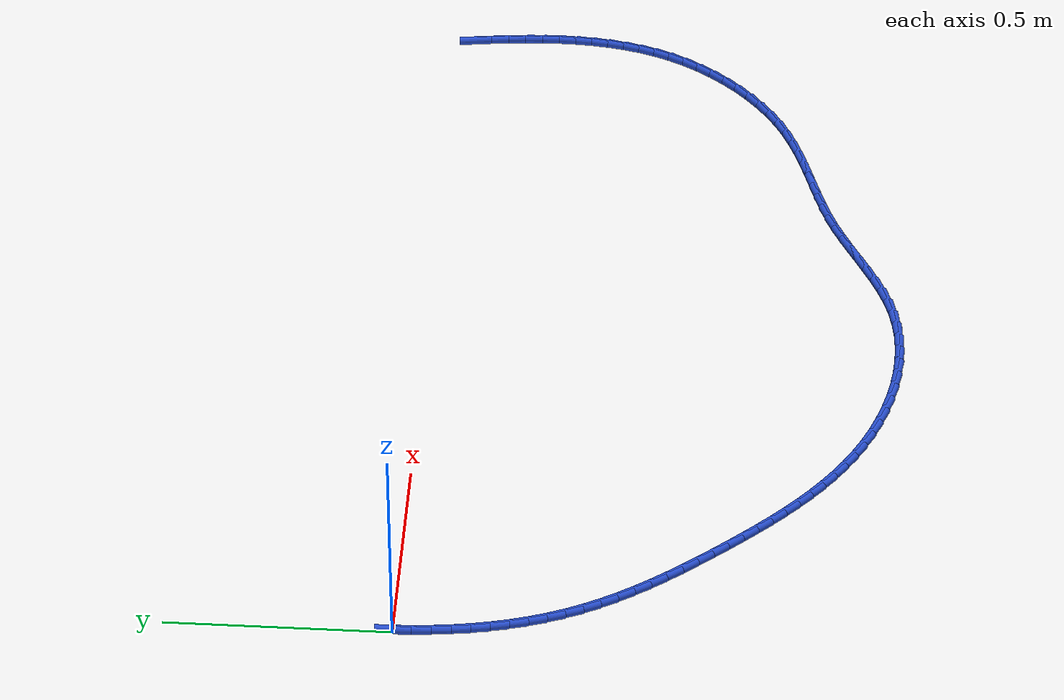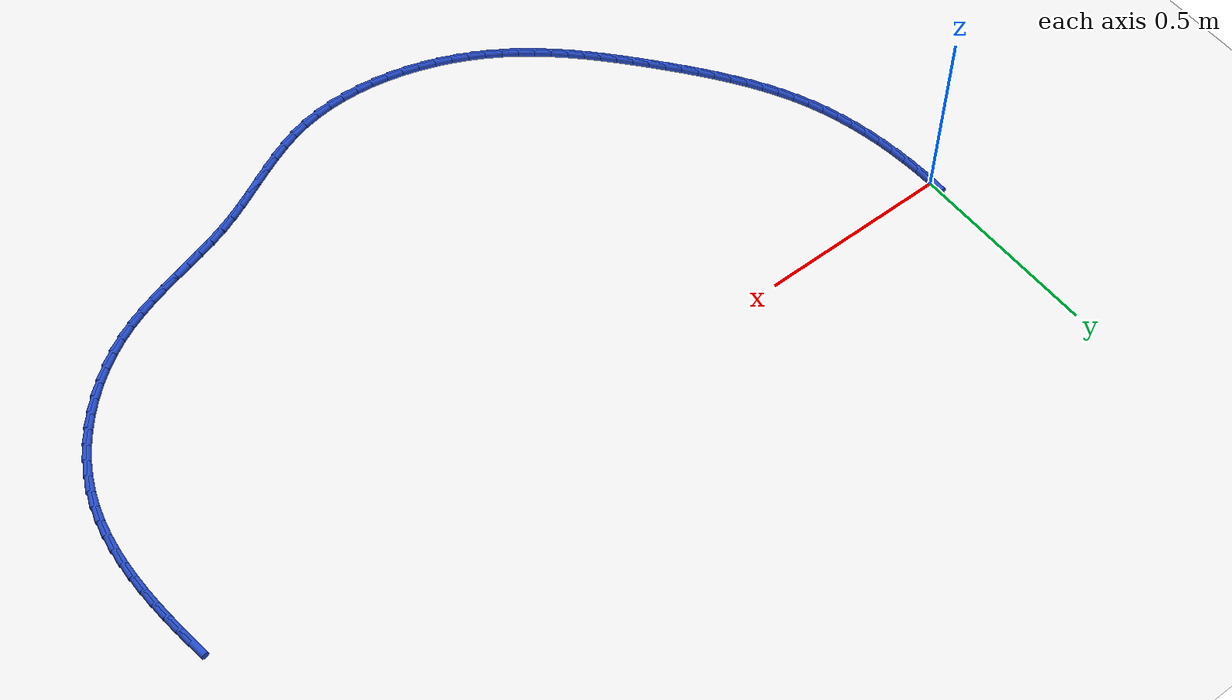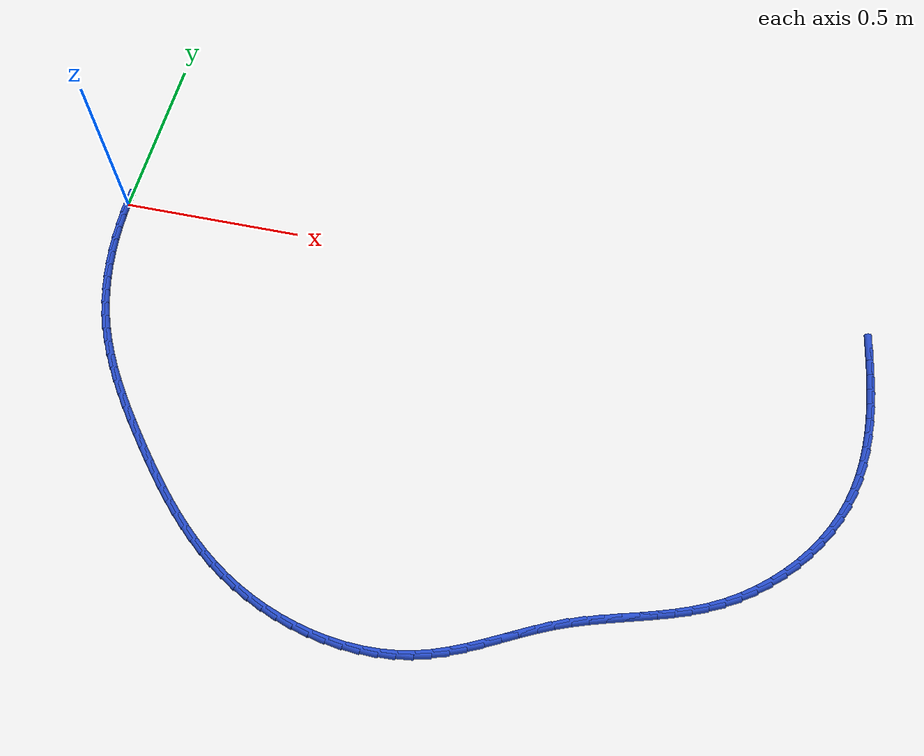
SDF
<sdf version="1.6">
 <world name="default">
  <model name="ground_plane">
   <static>1</static>
   <link name="link">
    <collision name="collision">
     <geometry><plane><normal>0 0 1</normal><size>100 100</size></plane></geometry>
     <surface><friction><ode><mu>100</mu><mu2>50</mu2></ode></friction></surface>
    </collision>
    <visual name="visual">
     <cast_shadows>0</cast_shadows>
     <geometry><plane><normal>0 0 1</normal><size>100 100</size></plane></geometry>
     <material>
      <script><uri>file://media/materials/scripts/gazebo.material</uri><name>Gazebo/WhiteGlow</name></script>
     </material>
    </visual>
   </link>
  </model>
  <model name="line">
   <link name="link_0">
    <pose>-1.6479873021779667e-17 -8.326672684688674e-17 0.01 0 1.57 -1.5696141677985251</pose>
    <collision name="collision">
     <geometry><cylinder><radius>0.01</radius><length>0.08</length></cylinder></geometry>
    </collision>
    <visual name="visual">
     <material>
      <script><name>Gazebo/Blue</name><uri>file://media/materials/scripts/gazebo.material</uri></script>
     </material>
     <geometry><cylinder><radius>0.01</radius><length>0.08</length></cylinder></geometry>
    </visual>
   </link>
   <link name="link_80">
    <pose>2.0935460116196314 -0.03920484027378614 0.01 0 1.57 -1.4511590344249525</pose>
    <collision name="collision">
     <geometry><cylinder><radius>0.01</radius><length>0.08</length></cylinder></geometry>
    </collision>
    <visual name="visual">
     <material>
      <script><name>Gazebo/Blue</name><uri>file://media/materials/scripts/gazebo.material</uri></script>
     </material>
     <geometry><cylinder><radius>0.01</radius><length>0.08</length></cylinder></geometry>
    </visual>
   </link>
   <link name="link_81">
    <pose>2.0987205130608544 -0.08224986463521909 0.01 0 1.57 -1.4704585164342756</pose>
    <collision name="collision">
     <geometry><cylinder><radius>0.01</radius><length>0.08</length></cylinder></geometry>
    </collision>
    <visual name="visual">
     <material>
      <script><name>Gazebo/Blue</name><uri>file://media/materials/scripts/gazebo.material</uri></script>
     </material>
     <geometry><cylinder><radius>0.01</radius><length>0.08</length></cylinder></geometry>
    </visual>
   </link>
   <link name="link_82">
    <pose>2.1030447844683566 -0.125202265674989 0.01 0 1.57 -1.494640015795897</pose>
    <collision name="collision">
     <geometry><cylinder><radius>0.01</radius><length>0.08</length></cylinder></geometry>
    </collision>
    <visual name="visual">
     <material>
      <script><name>Gazebo/Blue</name><uri>file://media/materials/scripts/gazebo.material</uri></script>
     </material>
     <geometry><cylinder><radius>0.01</radius><length>0.08</length></cylinder></geometry>
    </visual>
   </link>
   <link name="link_83">
    <pose>2.1063096769935683 -0.16799029138757554 0.01 0 1.57 -1.5239147054902131</pose>
    <collision name="collision">
     <geometry><cylinder><radius>0.01</radius><length>0.08</length></cylinder></geometry>
    </collision>
    <visual name="visual">
     <material>
      <script><name>Gazebo/Blue</name><uri>file://media/materials/scripts/gazebo.material</uri></script>
     </material>
     <geometry><cylinder><radius>0.01</radius><length>0.08</length></cylinder></geometry>
    </visual>
   </link>
   <link name="link_84">
    <pose>2.1083060417879165 -0.21054218976746086 0.01 0 1.57 -1.5585185614814403</pose>
    <collision name="collision">
     <geometry><cylinder><radius>0.01</radius><length>0.08</length></cylinder></geometry>
    </collision>
    <visual name="visual">
     <material>
      <script><name>Gazebo/Blue</name><uri>file://media/materials/scripts/gazebo.material</uri></script>
     </material>
     <geometry><cylinder><radius>0.01</radius><length>0.08</length></cylinder></geometry>
    </visual>
   </link>
   <link name="link_85">
    <pose>2.1088247300028318 -0.2527862088091264 0.01 0 1.57 1.542900679453798</pose>
    <collision name="collision">
     <geometry><cylinder><radius>0.01</radius><length>0.08</length></cylinder></geometry>
    </collision>
    <visual name="visual">
     <material>
      <script><name>Gazebo/Blue</name><uri>file://media/materials/scripts/gazebo.material</uri></script>
     </material>
     <geometry><cylinder><radius>0.01</radius><length>0.08</length></cylinder></geometry>
    </visual>
   </link>
   <link name="link_86">
    <pose>2.107656592789741 -0.2946505965070533 0.01 0 1.57 1.4969417863546002</pose>
    <collision name="collision">
     <geometry><cylinder><radius>0.01</radius><length>0.08</length></cylinder></geometry>
    </collision>
    <visual name="visual">
     <material>
      <script><name>Gazebo/Blue</name><uri>file://media/materials/scripts/gazebo.material</uri></script>
     </material>
     <geometry><cylinder><radius>0.01</radius><length>0.08</length></cylinder></geometry>
    </visual>
   </link>
   <link name="link_87">
    <pose>2.1045924813000743 -0.33606360085572384 0.01 0 1.57 1.4450449310464557</pose>
    <collision name="collision">
     <geometry><cylinder><radius>0.01</radius><length>0.08</length></cylinder></geometry>
    </collision>
    <visual name="visual">
     <material>
      <script><name>Gazebo/Blue</name><uri>file://media/materials/scripts/gazebo.material</uri></script>
     </material>
     <geometry><cylinder><radius>0.01</radius><length>0.08</length></cylinder></geometry>
    </visual>
   </link>
   <link name="link_88">
    <pose>2.09942324668526 -0.3769534698496177 0.01 0 1.57 1.387170333661449</pose>
    <collision name="collision">
     <geometry><cylinder><radius>0.01</radius><length>0.08</length></cylinder></geometry>
    </collision>
    <visual name="visual">
     <material>
      <script><name>Gazebo/Blue</name><uri>file://media/materials/scripts/gazebo.material</uri></script>
     </material>
     <geometry><cylinder><radius>0.01</radius><length>0.08</length></cylinder></geometry>
    </visual>
   </link>
   <link name="link_89">
    <pose>2.091939740096727 -0.417248451483217 0.01 0 1.57 1.3234478207695324</pose>
    <collision name="collision">
     <geometry><cylinder><radius>0.01</radius><length>0.08</length></cylinder></geometry>
    </collision>
    <visual name="visual">
     <material>
      <script><name>Gazebo/Blue</name><uri>file://media/materials/scripts/gazebo.material</uri></script>
     </material>
     <geometry><cylinder><radius>0.01</radius><length>0.08</length></cylinder></geometry>
    </visual>
   </link>
   <link name="link_90">
    <pose>2.0819328126859036 -0.4568767937510031 0.01 0 1.57 1.254234374512312</pose>
    <collision name="collision">
     <geometry><cylinder><radius>0.01</radius><length>0.08</length></cylinder></geometry>
    </collision>
    <visual name="visual">
     <material>
      <script><name>Gazebo/Blue</name><uri>file://media/materials/scripts/gazebo.material</uri></script>
     </material>
     <geometry><cylinder><radius>0.01</radius><length>0.08</length></cylinder></geometry>
    </visual>
   </link>
   <link name="link_91">
    <pose>2.0691933156042186 -0.4957667446474573 0.01 0 1.57 1.1801608470979135</pose>
    <collision name="collision">
     <geometry><cylinder><radius>0.01</radius><length>0.08</length></cylinder></geometry>
    </collision>
    <visual name="visual">
     <material>
      <script><name>Gazebo/Blue</name><uri>file://media/materials/scripts/gazebo.material</uri></script>
     </material>
     <geometry><cylinder><radius>0.01</radius><length>0.08</length></cylinder></geometry>
    </visual>
   </link>
   <link name="link_92">
    <pose>2.0535121331206407 -0.5338465407360613 0.01 0 1.57 1.1037062422990478</pose>
    <collision name="collision">
     <geometry><cylinder><radius>0.01</radius><length>0.08</length></cylinder></geometry>
    </collision>
    <visual name="visual">
     <material>
      <script><name>Gazebo/Blue</name><uri>file://media/materials/scripts/gazebo.material</uri></script>
     </material>
     <geometry><cylinder><radius>0.01</radius><length>0.08</length></cylinder></geometry>
    </visual>
   </link>
   <link name="link_93">
    <pose>2.0347681740403094 -0.5710140356303971 0.01 0 1.57 1.0300789832791954</pose>
    <collision name="collision">
     <geometry><cylinder><radius>0.01</radius><length>0.08</length></cylinder></geometry>
    </collision>
    <visual name="visual">
     <material>
      <script><name>Gazebo/Blue</name><uri>file://media/materials/scripts/gazebo.material</uri></script>
     </material>
     <geometry><cylinder><radius>0.01</radius><length>0.08</length></cylinder></geometry>
    </visual>
   </link>
   <link name="link_94">
    <pose>2.0131195629053993 -0.6070707075683045 0.01 0 1.57 0.9594884957494776</pose>
    <collision name="collision">
     <geometry><cylinder><radius>0.01</radius><length>0.08</length></cylinder></geometry>
    </collision>
    <visual name="visual">
     <material>
      <script><name>Gazebo/Blue</name><uri>file://media/materials/scripts/gazebo.material</uri></script>
     </material>
     <geometry><cylinder><radius>0.01</radius><length>0.08</length></cylinder></geometry>
    </visual>
   </link>
   <link name="link_95">
    <pose>1.9887796581796495 -0.6417989699956376 0.01 0 1.57 0.8910765824037559</pose>
    <collision name="collision">
     <geometry><cylinder><radius>0.01</radius><length>0.08</length></cylinder></geometry>
    </collision>
    <visual name="visual">
     <material>
      <script><name>Gazebo/Blue</name><uri>file://media/materials/scripts/gazebo.material</uri></script>
     </material>
     <geometry><cylinder><radius>0.01</radius><length>0.08</length></cylinder></geometry>
    </visual>
   </link>
   <link name="link_96">
    <pose>1.9619618183268026 -0.6749812363582511 0.01 0 1.57 0.8239942719198692</pose>
    <collision name="collision">
     <geometry><cylinder><radius>0.01</radius><length>0.08</length></cylinder></geometry>
    </collision>
    <visual name="visual">
     <material>
      <script><name>Gazebo/Blue</name><uri>file://media/materials/scripts/gazebo.material</uri></script>
     </material>
     <geometry><cylinder><radius>0.01</radius><length>0.08</length></cylinder></geometry>
    </visual>
   </link>
   <link name="link_97">
    <pose>1.932879401810601 -0.7063999201019988 0.01 0 1.57 0.7574033663054105</pose>
    <collision name="collision">
     <geometry><cylinder><radius>0.01</radius><length>0.08</length></cylinder></geometry>
    </collision>
    <visual name="visual">
     <material>
      <script><name>Gazebo/Blue</name><uri>file://media/materials/scripts/gazebo.material</uri></script>
     </material>
     <geometry><cylinder><radius>0.01</radius><length>0.08</length></cylinder></geometry>
    </visual>
   </link>
   <link name="link_98">
    <pose>1.9017457670947864 -0.7358374346727353 0.01 0 1.57 0.6904723676417378</pose>
    <collision name="collision">
     <geometry><cylinder><radius>0.01</radius><length>0.08</length></cylinder></geometry>
    </collision>
    <visual name="visual">
     <material>
      <script><name>Gazebo/Blue</name><uri>file://media/materials/scripts/gazebo.material</uri></script>
     </material>
     <geometry><cylinder><radius>0.01</radius><length>0.08</length></cylinder></geometry>
    </visual>
   </link>
   <link name="link_99">
    <pose>1.8687742726430996 -0.7630761935163152 0.01 0 1.57 0.6223706161427505</pose>
    <collision name="collision">
     <geometry><cylinder><radius>0.01</radius><length>0.08</length></cylinder></geometry>
    </collision>
    <visual name="visual">
     <material>
      <script><name>Gazebo/Blue</name><uri>file://media/materials/scripts/gazebo.material</uri></script>
     </material>
     <geometry><cylinder><radius>0.01</radius><length>0.08</length></cylinder></geometry>
    </visual>
   </link>
   <link name="link_100">
    <pose>1.834178276919283 -0.7878986100785925 0.01 0 1.57 0.5522640775014167</pose>
    <collision name="collision">
     <geometry><cylinder><radius>0.01</radius><length>0.08</length></cylinder></geometry>
    </collision>
    <visual name="visual">
     <material>
      <script><name>Gazebo/Blue</name><uri>file://media/materials/scripts/gazebo.material</uri></script>
     </material>
     <geometry><cylinder><radius>0.01</radius><length>0.08</length></cylinder></geometry>
    </visual>
   </link>
   <link name="link_101">
    <pose>1.7981711383870773 -0.8100870978054225 0.01 0 1.57 0.47977164110658044</pose>
    <collision name="collision">
     <geometry><cylinder><radius>0.01</radius><length>0.08</length></cylinder></geometry>
    </collision>
    <visual name="visual">
     <material>
      <script><name>Gazebo/Blue</name><uri>file://media/materials/scripts/gazebo.material</uri></script>
     </material>
     <geometry><cylinder><radius>0.01</radius><length>0.08</length></cylinder></geometry>
    </visual>
   </link>
   <link name="link_102">
    <pose>1.760965926113412 -0.829445737160789 0.01 0 1.57 0.4127642913571621</pose>
    <collision name="collision">
     <geometry><cylinder><radius>0.01</radius><length>0.08</length></cylinder></geometry>
    </collision>
    <visual name="visual">
     <material>
      <script><name>Gazebo/Blue</name><uri>file://media/materials/scripts/gazebo.material</uri></script>
     </material>
     <geometry><cylinder><radius>0.01</radius><length>0.08</length></cylinder></geometry>
    </visual>
   </link>
   <link name="link_103">
    <pose>1.7227704499630063 -0.8461723628740385 0.01 0 1.57 0.3591565815814277</pose>
    <collision name="collision">
     <geometry><cylinder><radius>0.01</radius><length>0.08</length></cylinder></geometry>
    </collision>
    <visual name="visual">
     <material>
      <script><name>Gazebo/Blue</name><uri>file://media/materials/scripts/gazebo.material</uri></script>
     </material>
     <geometry><cylinder><radius>0.01</radius><length>0.08</length></cylinder></geometry>
    </visual>
   </link>
   <link name="link_104">
    <pose>1.6837879363957575 -0.8608079672724994 0.01 0 1.57 0.31966181598271337</pose>
    <collision name="collision">
     <geometry><cylinder><radius>0.01</radius><length>0.08</length></cylinder></geometry>
    </collision>
    <visual name="visual">
     <material>
      <script><name>Gazebo/Blue</name><uri>file://media/materials/scripts/gazebo.material</uri></script>
     </material>
     <geometry><cylinder><radius>0.01</radius><length>0.08</length></cylinder></geometry>
    </visual>
   </link>
   <link name="link_105">
    <pose>1.6442214584362187 -0.8739050303235776 0.01 0 1.57 0.29436612367566006</pose>
    <collision name="collision">
     <geometry><cylinder><radius>0.01</radius><length>0.08</length></cylinder></geometry>
    </collision>
    <visual name="visual">
     <material>
      <script><name>Gazebo/Blue</name><uri>file://media/materials/scripts/gazebo.material</uri></script>
     </material>
     <geometry><cylinder><radius>0.01</radius><length>0.08</length></cylinder></geometry>
    </visual>
   </link>
   <link name="link_106">
    <pose>1.604274089108943 -0.8860160319946798 0.01 0 1.57 0.28320236044601754</pose>
    <collision name="collision">
     <geometry><cylinder><radius>0.01</radius><length>0.08</length></cylinder></geometry>
    </collision>
    <visual name="visual">
     <material>
      <script><name>Gazebo/Blue</name><uri>file://media/materials/scripts/gazebo.material</uri></script>
     </material>
     <geometry><cylinder><radius>0.01</radius><length>0.08</length></cylinder></geometry>
    </visual>
   </link>
   <link name="link_107">
    <pose>1.564148901438484 -0.8976934522532116 0.01 0 1.57 0.28610241495619676</pose>
    <collision name="collision">
     <geometry><cylinder><radius>0.01</radius><length>0.08</length></cylinder></geometry>
    </collision>
    <visual name="visual">
     <material>
      <script><name>Gazebo/Blue</name><uri>file://media/materials/scripts/gazebo.material</uri></script>
     </material>
     <geometry><cylinder><radius>0.01</radius><length>0.08</length></cylinder></geometry>
    </visual>
   </link>
   <link name="link_108">
    <pose>1.5240489684493932 -0.909489771066579 0.01 0 1.57 0.3030635543394813</pose>
    <collision name="collision">
     <geometry><cylinder><radius>0.01</radius><length>0.08</length></cylinder></geometry>
    </collision>
    <visual name="visual">
     <material>
      <script><name>Gazebo/Blue</name><uri>file://media/materials/scripts/gazebo.material</uri></script>
     </material>
     <geometry><cylinder><radius>0.01</radius><length>0.08</length></cylinder></geometry>
    </visual>
   </link>
   <link name="link_109">
    <pose>1.484177363166223 -0.9219574684021882 0.01 0 1.57 0.33413107522237095</pose>
    <collision name="collision">
     <geometry><cylinder><radius>0.01</radius><length>0.08</length></cylinder></geometry>
    </collision>
    <visual name="visual">
     <material>
      <script><name>Gazebo/Blue</name><uri>file://media/materials/scripts/gazebo.material</uri></script>
     </material>
     <geometry><cylinder><radius>0.01</radius><length>0.08</length></cylinder></geometry>
    </visual>
   </link>
   <link name="link_110">
    <pose>1.4447371586135274 -0.9356490242274458 0.01 0 1.57 0.3791542190764861</pose>
    <collision name="collision">
     <geometry><cylinder><radius>0.01</radius><length>0.08</length></cylinder></geometry>
    </collision>
    <visual name="visual">
     <material>
      <script><name>Gazebo/Blue</name><uri>file://media/materials/scripts/gazebo.material</uri></script>
     </material>
     <geometry><cylinder><radius>0.01</radius><length>0.08</length></cylinder></geometry>
    </visual>
   </link>
   <link name="link_111">
    <pose>1.4059294584291075 -0.9511112671620638 0.01 0 1.57 0.42694644986485186</pose>
    <collision name="collision">
     <geometry><cylinder><radius>0.01</radius><length>0.08</length></cylinder></geometry>
    </collision>
    <visual name="visual">
     <material>
      <script><name>Gazebo/Blue</name><uri>file://media/materials/scripts/gazebo.material</uri></script>
     </material>
     <geometry><cylinder><radius>0.01</radius><length>0.08</length></cylinder></geometry>
    </visual>
   </link>
   <link name="link_112">
    <pose>1.3678037083455945 -0.9684558286493804 0.01 0 1.57 0.45888676727699623</pose>
    <collision name="collision">
     <geometry><cylinder><radius>0.01</radius><length>0.08</length></cylinder></geometry>
    </collision>
    <visual name="visual">
     <material>
      <script><name>Gazebo/Blue</name><uri>file://media/materials/scripts/gazebo.material</uri></script>
     </material>
     <geometry><cylinder><radius>0.01</radius><length>0.08</length></cylinder></geometry>
    </visual>
   </link>
   <link name="link_113">
    <pose>1.3301526863218927 -0.9870578068787484 0.01 0 1.57 0.47341810155405756</pose>
    <collision name="collision">
     <geometry><cylinder><radius>0.01</radius><length>0.08</length></cylinder></geometry>
    </collision>
    <visual name="visual">
     <material>
      <script><name>Gazebo/Blue</name><uri>file://media/materials/scripts/gazebo.material</uri></script>
     </material>
     <geometry><cylinder><radius>0.01</radius><length>0.08</length></cylinder></geometry>
    </visual>
   </link>
   <link name="link_114">
    <pose>1.2927443586450902 -1.006221100523059 0.01 0 1.57 0.47067500795220174</pose>
    <collision name="collision">
     <geometry><cylinder><radius>0.01</radius><length>0.08</length></cylinder></geometry>
    </collision>
    <visual name="visual">
     <material>
      <script><name>Gazebo/Blue</name><uri>file://media/materials/scripts/gazebo.material</uri></script>
     </material>
     <geometry><cylinder><radius>0.01</radius><length>0.08</length></cylinder></geometry>
    </visual>
   </link>
   <link name="link_115">
    <pose>1.2553466916022749 -1.0252496082552016 0.01 0 1.57 0.4505505898525352</pose>
    <collision name="collision">
     <geometry><cylinder><radius>0.01</radius><length>0.08</length></cylinder></geometry>
    </collision>
    <visual name="visual">
     <material>
      <script><name>Gazebo/Blue</name><uri>file://media/materials/scripts/gazebo.material</uri></script>
     </material>
     <geometry><cylinder><radius>0.01</radius><length>0.08</length></cylinder></geometry>
    </visual>
   </link>
   <link name="link_116">
    <pose>1.2177276514805337 -1.0434472287480667 0.01 0 1.57 0.41271764187791726</pose>
    <collision name="collision">
     <geometry><cylinder><radius>0.01</radius><length>0.08</length></cylinder></geometry>
    </collision>
    <visual name="visual">
     <material>
      <script><name>Gazebo/Blue</name><uri>file://media/materials/scripts/gazebo.material</uri></script>
     </material>
     <geometry><cylinder><radius>0.01</radius><length>0.08</length></cylinder></geometry>
    </visual>
   </link>
   <link name="link_117">
    <pose>1.1796552045669568 -1.0601178606745443 0.01 0 1.57 0.3568088313649624</pose>
    <collision name="collision">
     <geometry><cylinder><radius>0.01</radius><length>0.08</length></cylinder></geometry>
    </collision>
    <visual name="visual">
     <material>
      <script><name>Gazebo/Blue</name><uri>file://media/materials/scripts/gazebo.material</uri></script>
     </material>
     <geometry><cylinder><radius>0.01</radius><length>0.08</length></cylinder></geometry>
    </visual>
   </link>
   <link name="link_118">
    <pose>1.1408973171486303 -1.0745654027075244 0.01 0 1.57 0.28282551097658043</pose>
    <collision name="collision">
     <geometry><cylinder><radius>0.01</radius><length>0.08</length></cylinder></geometry>
    </collision>
    <visual name="visual">
     <material>
      <script><name>Gazebo/Blue</name><uri>file://media/materials/scripts/gazebo.material</uri></script>
     </material>
     <geometry><cylinder><radius>0.01</radius><length>0.08</length></cylinder></geometry>
    </visual>
   </link>
   <link name="link_119">
    <pose>1.1012228790890737 -1.086095427882393 0.01 0 1.57 0.19815621865097988</pose>
    <collision name="collision">
     <geometry><cylinder><radius>0.01</radius><length>0.08</length></cylinder></geometry>
    </collision>
    <visual name="visual">
     <material>
      <script><name>Gazebo/Blue</name><uri>file://media/materials/scripts/gazebo.material</uri></script>
     </material>
     <geometry><cylinder><radius>0.01</radius><length>0.08</length></cylinder></geometry>
    </visual>
   </link>
   <link name="link_120">
    <pose>1.0605391507601036 -1.09426436274485 0.01 0 1.57 0.11704556574156334</pose>
    <collision name="collision">
     <geometry><cylinder><radius>0.01</radius><length>0.08</length></cylinder></geometry>
    </collision>
    <visual name="visual">
     <material>
      <script><name>Gazebo/Blue</name><uri>file://media/materials/scripts/gazebo.material</uri></script>
     </material>
     <geometry><cylinder><radius>0.01</radius><length>0.08</length></cylinder></geometry>
    </visual>
   </link>
   <link name="link_121">
    <pose>1.0190377880153483 -1.0991442177305881 0.01 0 1.57 0.040986537509210476</pose>
    <collision name="collision">
     <geometry><cylinder><radius>0.01</radius><length>0.08</length></cylinder></geometry>
    </collision>
    <visual name="visual">
     <material>
      <script><name>Gazebo/Blue</name><uri>file://media/materials/scripts/gazebo.material</uri></script>
     </material>
     <geometry><cylinder><radius>0.01</radius><length>0.08</length></cylinder></geometry>
    </visual>
   </link>
   <link name="link_122">
    <pose>0.9769454189754135 -1.1008704049064906 0.01 0 1.57 -0.030423195217353382</pose>
    <collision name="collision">
     <geometry><cylinder><radius>0.01</radius><length>0.08</length></cylinder></geometry>
    </collision>
    <visual name="visual">
     <material>
      <script><name>Gazebo/Blue</name><uri>file://media/materials/scripts/gazebo.material</uri></script>
     </material>
     <geometry><cylinder><radius>0.01</radius><length>0.08</length></cylinder></geometry>
    </visual>
   </link>
   <link name="link_123">
    <pose>0.9344886717609047 -1.0995783363394411 0.01 0 1.57 -0.09770321499713813</pose>
    <collision name="collision">
     <geometry><cylinder><radius>0.01</radius><length>0.08</length></cylinder></geometry>
    </collision>
    <visual name="visual">
     <material>
      <script><name>Gazebo/Blue</name><uri>file://media/materials/scripts/gazebo.material</uri></script>
     </material>
     <geometry><cylinder><radius>0.01</radius><length>0.08</length></cylinder></geometry>
    </visual>
   </link>
   <link name="link_124">
    <pose>0.891894174492427 -1.0954034240963242 0.01 0 1.57 -0.16143984305218112</pose>
    <collision name="collision">
     <geometry><cylinder><radius>0.01</radius><length>0.08</length></cylinder></geometry>
    </collision>
    <visual name="visual">
     <material>
      <script><name>Gazebo/Blue</name><uri>file://media/materials/scripts/gazebo.material</uri></script>
     </material>
     <geometry><cylinder><radius>0.01</radius><length>0.08</length></cylinder></geometry>
    </visual>
   </link>
   <link name="link_125">
    <pose>0.8493885552905864 -1.0884810802440241 0.01 0 1.57 -0.2222524739414261</pose>
    <collision name="collision">
     <geometry><cylinder><radius>0.01</radius><length>0.08</length></cylinder></geometry>
    </collision>
    <visual name="visual">
     <material>
      <script><name>Gazebo/Blue</name><uri>file://media/materials/scripts/gazebo.material</uri></script>
     </material>
     <geometry><cylinder><radius>0.01</radius><length>0.08</length></cylinder></geometry>
    </visual>
   </link>
   <link name="link_126">
    <pose>0.8071984422759871 -1.0789467168494247 0.01 0 1.57 -0.2807741251758357</pose>
    <collision name="collision">
     <geometry><cylinder><radius>0.01</radius><length>0.08</length></cylinder></geometry>
    </collision>
    <visual name="visual">
     <material>
      <script><name>Gazebo/Blue</name><uri>file://media/materials/scripts/gazebo.material</uri></script>
     </material>
     <geometry><cylinder><radius>0.01</radius><length>0.08</length></cylinder></geometry>
    </visual>
   </link>
   <link name="link_127">
    <pose>0.7655504635692363 -1.06693574597941 0.01 0 1.57 -0.3376429712731801</pose>
    <collision name="collision">
     <geometry><cylinder><radius>0.01</radius><length>0.08</length></cylinder></geometry>
    </collision>
    <visual name="visual">
     <material>
      <script><name>Gazebo/Blue</name><uri>file://media/materials/scripts/gazebo.material</uri></script>
     </material>
     <geometry><cylinder><radius>0.01</radius><length>0.08</length></cylinder></geometry>
    </visual>
   </link>
   <link name="link_128">
    <pose>0.7246712472909387 -1.0525835797008642 0.01 0 1.57 -0.3935019526139334</pose>
    <collision name="collision">
     <geometry><cylinder><radius>0.01</radius><length>0.08</length></cylinder></geometry>
    </collision>
    <visual name="visual">
     <material>
      <script><name>Gazebo/Blue</name><uri>file://media/materials/scripts/gazebo.material</uri></script>
     </material>
     <geometry><cylinder><radius>0.01</radius><length>0.08</length></cylinder></geometry>
    </visual>
   </link>
   <link name="link_129">
    <pose>0.6847874215616999 -1.0360256300806712 0.01 0 1.57 -0.4490041853787734</pose>
    <collision name="collision">
     <geometry><cylinder><radius>0.01</radius><length>0.08</length></cylinder></geometry>
    </collision>
    <visual name="visual">
     <material>
      <script><name>Gazebo/Blue</name><uri>file://media/materials/scripts/gazebo.material</uri></script>
     </material>
     <geometry><cylinder><radius>0.01</radius><length>0.08</length></cylinder></geometry>
    </visual>
   </link>
   <link name="link_130">
    <pose>0.6461256145021254 -1.0173973091857154 0.01 0 1.57 -0.5047663223242437</pose>
    <collision name="collision">
     <geometry><cylinder><radius>0.01</radius><length>0.08</length></cylinder></geometry>
    </collision>
    <visual name="visual">
     <material>
      <script><name>Gazebo/Blue</name><uri>file://media/materials/scripts/gazebo.material</uri></script>
     </material>
     <geometry><cylinder><radius>0.01</radius><length>0.08</length></cylinder></geometry>
    </visual>
   </link>
   <link name="link_131">
    <pose>0.6089077241259498 -0.9968341453245164 0.01 0 1.57 -0.5594815733165317</pose>
    <collision name="collision">
     <geometry><cylinder><radius>0.01</radius><length>0.08</length></cylinder></geometry>
    </collision>
    <visual name="visual">
     <material>
      <script><name>Gazebo/Blue</name><uri>file://media/materials/scripts/gazebo.material</uri></script>
     </material>
     <geometry><cylinder><radius>0.01</radius><length>0.08</length></cylinder></geometry>
    </visual>
   </link>
   <link name="link_132">
    <pose>0.5732038532850358 -0.9744753971479553 0.01 0 1.57 -0.610736398015351</pose>
    <collision name="collision">
     <geometry><cylinder><radius>0.01</radius><length>0.08</length></cylinder></geometry>
    </collision>
    <visual name="visual">
     <material>
      <script><name>Gazebo/Blue</name><uri>file://media/materials/scripts/gazebo.material</uri></script>
     </material>
     <geometry><cylinder><radius>0.01</radius><length>0.08</length></cylinder></geometry>
    </visual>
   </link>
   <link name="link_133">
    <pose>0.538903700160916 -0.9504647567234652 0.01 0 1.57 -0.6579883181360199</pose>
    <collision name="collision">
     <geometry><cylinder><radius>0.01</radius><length>0.08</length></cylinder></geometry>
    </collision>
    <visual name="visual">
     <material>
      <script><name>Gazebo/Blue</name><uri>file://media/materials/scripts/gazebo.material</uri></script>
     </material>
     <geometry><cylinder><radius>0.01</radius><length>0.08</length></cylinder></geometry>
    </visual>
   </link>
   <link name="link_134">
    <pose>0.5058864573944308 -0.9249461742905002 0.01 0 1.57 -0.700942421439974</pose>
    <collision name="collision">
     <geometry><cylinder><radius>0.01</radius><length>0.08</length></cylinder></geometry>
    </collision>
    <visual name="visual">
     <material>
      <script><name>Gazebo/Blue</name><uri>file://media/materials/scripts/gazebo.material</uri></script>
     </material>
     <geometry><cylinder><radius>0.01</radius><length>0.08</length></cylinder></geometry>
    </visual>
   </link>
   <link name="link_135">
    <pose>0.47403131762642076 -0.8980636000885134 0.01 0 1.57 -0.7394124235924814</pose>
    <collision name="collision">
     <geometry><cylinder><radius>0.01</radius><length>0.08</length></cylinder></geometry>
    </collision>
    <visual name="visual">
     <material>
      <script><name>Gazebo/Blue</name><uri>file://media/materials/scripts/gazebo.material</uri></script>
     </material>
     <geometry><cylinder><radius>0.01</radius><length>0.08</length></cylinder></geometry>
    </visual>
   </link>
   <link name="link_136">
    <pose>0.44321747349772506 -0.8699609843569576 0.01 0 1.57 -0.7733008380294207</pose>
    <collision name="collision">
     <geometry><cylinder><radius>0.01</radius><length>0.08</length></cylinder></geometry>
    </collision>
    <visual name="visual">
     <material>
      <script><name>Gazebo/Blue</name><uri>file://media/materials/scripts/gazebo.material</uri></script>
     </material>
     <geometry><cylinder><radius>0.01</radius><length>0.08</length></cylinder></geometry>
    </visual>
   </link>
   <link name="link_137">
    <pose>0.4133241176491855 -0.8407822773352874 0.01 0 1.57 -0.8025771394201401</pose>
    <collision name="collision">
     <geometry><cylinder><radius>0.01</radius><length>0.08</length></cylinder></geometry>
    </collision>
    <visual name="visual">
     <material>
      <script><name>Gazebo/Blue</name><uri>file://media/materials/scripts/gazebo.material</uri></script>
     </material>
     <geometry><cylinder><radius>0.01</radius><length>0.08</length></cylinder></geometry>
    </visual>
   </link>
   <link name="link_138">
    <pose>0.3842304427216416 -0.8106714292629558 0.01 0 1.57 -0.8272566307376972</pose>
    <collision name="collision">
     <geometry><cylinder><radius>0.01</radius><length>0.08</length></cylinder></geometry>
    </collision>
    <visual name="visual">
     <material>
      <script><name>Gazebo/Blue</name><uri>file://media/materials/scripts/gazebo.material</uri></script>
     </material>
     <geometry><cylinder><radius>0.01</radius><length>0.08</length></cylinder></geometry>
    </visual>
   </link>
   <link name="link_139">
    <pose>0.35581564135593347 -0.7797723903794159 0.01 0 1.57 -0.8473816818398614</pose>
    <collision name="collision">
     <geometry><cylinder><radius>0.01</radius><length>0.08</length></cylinder></geometry>
    </collision>
    <visual name="visual">
     <material>
      <script><name>Gazebo/Blue</name><uri>file://media/materials/scripts/gazebo.material</uri></script>
     </material>
     <geometry><cylinder><radius>0.01</radius><length>0.08</length></cylinder></geometry>
    </visual>
   </link>
   <link name="link_140">
    <pose>0.3279589061929015 -0.7482291109241213 0.01 0 1.57 -0.8630061301506476</pose>
    <collision name="collision">
     <geometry><cylinder><radius>0.01</radius><length>0.08</length></cylinder></geometry>
    </collision>
    <visual name="visual">
     <material>
      <script><name>Gazebo/Blue</name><uri>file://media/materials/scripts/gazebo.material</uri></script>
     </material>
     <geometry><cylinder><radius>0.01</radius><length>0.08</length></cylinder></geometry>
    </visual>
   </link>
   <link name="link_141">
    <pose>0.3005394298733855 -0.7161855411365249 0.01 0 1.57 -0.8747145609778</pose>
    <collision name="collision">
     <geometry><cylinder><radius>0.01</radius><length>0.08</length></cylinder></geometry>
    </collision>
    <visual name="visual">
     <material>
      <script><name>Gazebo/Blue</name><uri>file://media/materials/scripts/gazebo.material</uri></script>
     </material>
     <geometry><cylinder><radius>0.01</radius><length>0.08</length></cylinder></geometry>
    </visual>
   </link>
   <link name="link_142">
    <pose>0.27345522530504673 -0.6837731379283033 0.01 0 1.57 -0.8876932848479067</pose>
    <collision name="collision">
     <geometry><cylinder><radius>0.01</radius><length>0.08</length></cylinder></geometry>
    </collision>
    <visual name="visual">
     <material>
      <script><name>Gazebo/Blue</name><uri>file://media/materials/scripts/gazebo.material</uri></script>
     </material>
     <geometry><cylinder><radius>0.01</radius><length>0.08</length></cylinder></geometry>
    </visual>
   </link>
   <link name="link_143">
    <pose>0.24678630240536964 -0.651002544392707 0.01 0 1.57 -0.9048829857356901</pose>
    <collision name="collision">
     <geometry><cylinder><radius>0.01</radius><length>0.08</length></cylinder></geometry>
    </collision>
    <visual name="visual">
     <material>
      <script><name>Gazebo/Blue</name><uri>file://media/materials/scripts/gazebo.material</uri></script>
     </material>
     <geometry><cylinder><radius>0.01</radius><length>0.08</length></cylinder></geometry>
    </visual>
   </link>
   <link name="link_144">
    <pose>0.22071469364060287 -0.6178166786988604 0.01 0 1.57 -0.9264038299016469</pose>
    <collision name="collision">
     <geometry><cylinder><radius>0.01</radius><length>0.08</length></cylinder></geometry>
    </collision>
    <visual name="visual">
     <material>
      <script><name>Gazebo/Blue</name><uri>file://media/materials/scripts/gazebo.material</uri></script>
     </material>
     <geometry><cylinder><radius>0.01</radius><length>0.08</length></cylinder></geometry>
    </visual>
   </link>
   <link name="link_145">
    <pose>0.19542355709257467 -0.5841577118062696 0.01 0 1.57 -0.9523667898136823</pose>
    <collision name="collision">
     <geometry><cylinder><radius>0.01</radius><length>0.08</length></cylinder></geometry>
    </collision>
    <visual name="visual">
     <material>
      <script><name>Gazebo/Blue</name><uri>file://media/materials/scripts/gazebo.material</uri></script>
     </material>
     <geometry><cylinder><radius>0.01</radius><length>0.08</length></cylinder></geometry>
    </visual>
   </link>
   <link name="link_146">
    <pose>0.17109605084311263 -0.5499678146744401 0.01 0 1.57 -0.9828943169892924</pose>
    <collision name="collision">
     <geometry><cylinder><radius>0.01</radius><length>0.08</length></cylinder></geometry>
    </collision>
    <visual name="visual">
     <material>
      <script><name>Gazebo/Blue</name><uri>file://media/materials/scripts/gazebo.material</uri></script>
     </material>
     <geometry><cylinder><radius>0.01</radius><length>0.08</length></cylinder></geometry>
    </visual>
   </link>
   <link name="link_147">
    <pose>0.14791533297404605 -0.5151891582628795 0.01 0 1.57 -1.0181055586261272</pose>
    <collision name="collision">
     <geometry><cylinder><radius>0.01</radius><length>0.08</length></cylinder></geometry>
    </collision>
    <visual name="visual">
     <material>
      <script><name>Gazebo/Blue</name><uri>file://media/materials/scripts/gazebo.material</uri></script>
     </material>
     <geometry><cylinder><radius>0.01</radius><length>0.08</length></cylinder></geometry>
    </visual>
   </link>
   <link name="link_148">
    <pose>0.1260645615672026 -0.4797639135310932 0.01 0 1.57 -1.0580971742567973</pose>
    <collision name="collision">
     <geometry><cylinder><radius>0.01</radius><length>0.08</length></cylinder></geometry>
    </collision>
    <visual name="visual">
     <material>
      <script><name>Gazebo/Blue</name><uri>file://media/materials/scripts/gazebo.material</uri></script>
     </material>
     <geometry><cylinder><radius>0.01</radius><length>0.08</length></cylinder></geometry>
    </visual>
   </link>
   <link name="link_149">
    <pose>0.10572689470441055 -0.4436342514385876 0.01 0 1.57 -1.1029193781808515</pose>
    <collision name="collision">
     <geometry><cylinder><radius>0.01</radius><length>0.08</length></cylinder></geometry>
    </collision>
    <visual name="visual">
     <material>
      <script><name>Gazebo/Blue</name><uri>file://media/materials/scripts/gazebo.material</uri></script>
     </material>
     <geometry><cylinder><radius>0.01</radius><length>0.08</length></cylinder></geometry>
    </visual>
   </link>
   <link name="link_150">
    <pose>0.08708549046749799 -0.4067423429448686 0.01 0 1.57 -1.152495256543532</pose>
    <collision name="collision">
     <geometry><cylinder><radius>0.01</radius><length>0.08</length></cylinder></geometry>
    </collision>
    <visual name="visual">
     <material>
      <script><name>Gazebo/Blue</name><uri>file://media/materials/scripts/gazebo.material</uri></script>
     </material>
     <geometry><cylinder><radius>0.01</radius><length>0.08</length></cylinder></geometry>
    </visual>
   </link>
   <link name="link_151">
    <pose>0.07032156645582194 -0.3690313118256279 0.01 0 1.57 -1.2040827076366496</pose>
    <collision name="collision">
     <geometry><cylinder><radius>0.01</radius><length>0.08</length></cylinder></geometry>
    </collision>
    <visual name="visual">
     <material>
      <script><name>Gazebo/Blue</name><uri>file://media/materials/scripts/gazebo.material</uri></script>
     </material>
     <geometry><cylinder><radius>0.01</radius><length>0.08</length></cylinder></geometry>
    </visual>
   </link>
   <link name="link_152">
    <pose>0.05551911830044591 -0.33049201981162757 0.01 0 1.57 -1.2537467988803657</pose>
    <collision name="collision">
     <geometry><cylinder><radius>0.01</radius><length>0.08</length></cylinder></geometry>
    </collision>
    <visual name="visual">
     <material>
      <script><name>Gazebo/Blue</name><uri>file://media/materials/scripts/gazebo.material</uri></script>
     </material>
     <geometry><cylinder><radius>0.01</radius><length>0.08</length></cylinder></geometry>
    </visual>
   </link>
   <link name="link_153">
    <pose>0.04262156215994875 -0.29118435600119585 0.01 0 1.57 -1.3010997786214409</pose>
    <collision name="collision">
     <geometry><cylinder><radius>0.01</radius><length>0.08</length></cylinder></geometry>
    </collision>
    <visual name="visual">
     <material>
      <script><name>Gazebo/Blue</name><uri>file://media/materials/scripts/gazebo.material</uri></script>
     </material>
     <geometry><cylinder><radius>0.01</radius><length>0.08</length></cylinder></geometry>
    </visual>
   </link>
   <link name="link_154">
    <pose>0.031561330824889024 -0.25117360254876 0.01 0 1.57 -1.3460997918539435</pose>
    <collision name="collision">
     <geometry><cylinder><radius>0.01</radius><length>0.08</length></cylinder></geometry>
    </collision>
    <visual name="visual">
     <material>
      <script><name>Gazebo/Blue</name><uri>file://media/materials/scripts/gazebo.material</uri></script>
     </material>
     <geometry><cylinder><radius>0.01</radius><length>0.08</length></cylinder></geometry>
    </visual>
   </link>
   <link name="link_155">
    <pose>0.022270857085825383 -0.21052504160874758 0.01 0 1.57 -1.388747086542798</pose>
    <collision name="collision">
     <geometry><cylinder><radius>0.01</radius><length>0.08</length></cylinder></geometry>
    </collision>
    <visual name="visual">
     <material>
      <script><name>Gazebo/Blue</name><uri>file://media/materials/scripts/gazebo.material</uri></script>
     </material>
     <geometry><cylinder><radius>0.01</radius><length>0.08</length></cylinder></geometry>
    </visual>
   </link>
   <link name="link_156">
    <pose>0.014682573733316313 -0.1693039553355854 0.01 0 1.57 -1.429076114585741</pose>
    <collision name="collision">
     <geometry><cylinder><radius>0.01</radius><length>0.08</length></cylinder></geometry>
    </collision>
    <visual name="visual">
     <material>
      <script><name>Gazebo/Blue</name><uri>file://media/materials/scripts/gazebo.material</uri></script>
     </material>
     <geometry><cylinder><radius>0.01</radius><length>0.08</length></cylinder></geometry>
    </visual>
   </link>
   <link name="link_157">
    <pose>0.00872891355792071 -0.12757562588370247 0.01 0 1.57 -1.4671478939699139</pose>
    <collision name="collision">
     <geometry><cylinder><radius>0.01</radius><length>0.08</length></cylinder></geometry>
    </collision>
    <visual name="visual">
     <material>
      <script><name>Gazebo/Blue</name><uri>file://media/materials/scripts/gazebo.material</uri></script>
     </material>
     <geometry><cylinder><radius>0.01</radius><length>0.08</length></cylinder></geometry>
    </visual>
   </link>
   <link name="link_158">
    <pose>0.0043423093501970406 -0.08540533540752558 0.01 0 1.57 -1.5030430562812462</pose>
    <collision name="collision">
     <geometry><cylinder><radius>0.01</radius><length>0.08</length></cylinder></geometry>
    </collision>
    <visual name="visual">
     <material>
      <script><name>Gazebo/Blue</name><uri>file://media/materials/scripts/gazebo.material</uri></script>
     </material>
     <geometry><cylinder><radius>0.01</radius><length>0.08</length></cylinder></geometry>
    </visual>
   </link>
   <link name="link_159">
    <pose>0.0014551939007039173 -0.0428583660614822 0.01 0 1.57 -1.5368558102270813</pose>
    <collision name="collision">
     <geometry><cylinder><radius>0.01</radius><length>0.08</length></cylinder></geometry>
    </collision>
    <visual name="visual">
     <material>
      <script><name>Gazebo/Blue</name><uri>file://media/materials/scripts/gazebo.material</uri></script>
     </material>
     <geometry><cylinder><radius>0.01</radius><length>0.08</length></cylinder></geometry>
    </visual>
   </link>
  </model>
 </world>
</sdf>
